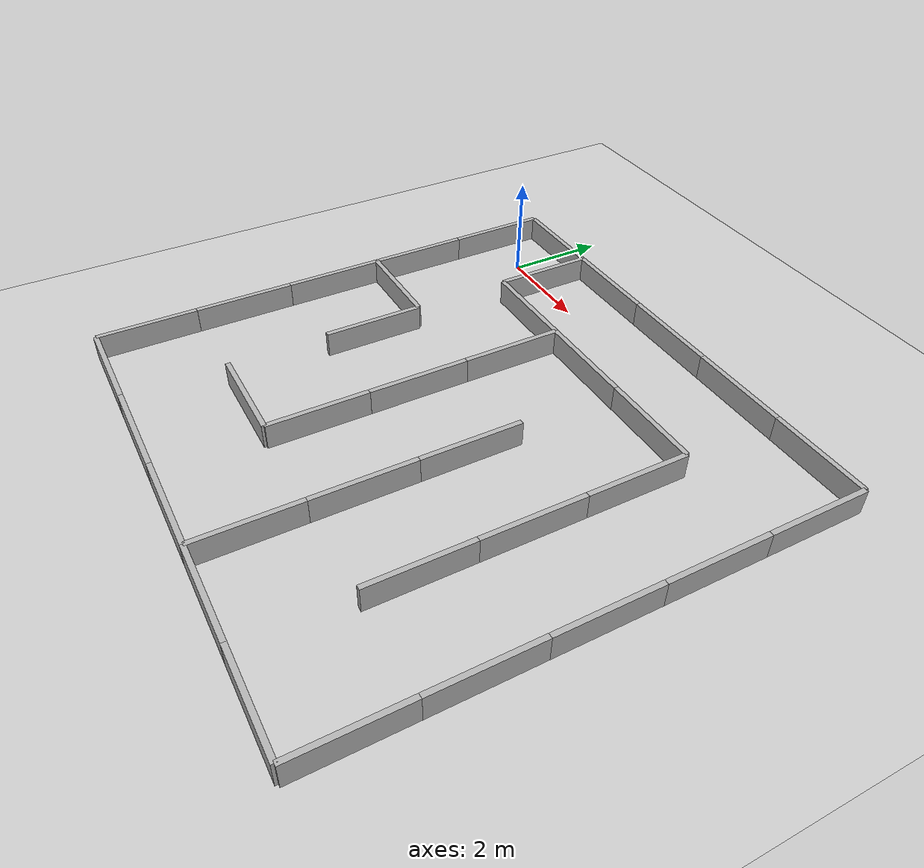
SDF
<?xml version="1.0" ?>
<sdf version="1.8">
  <world name="generated_maze_5x5">

    <physics name="1ms" type="ignored">
      <max_step_size>0.001</max_step_size>
      <real_time_factor>1.0</real_time_factor>
    </physics>

    <plugin filename="gz-sim-physics-system" name="gz::sim::systems::Physics"></plugin>
    <plugin filename="gz-sim-user-commands-system" name="gz::sim::systems::UserCommands"></plugin>
    <plugin filename="gz-sim-scene-broadcaster-system" name="gz::sim::systems::SceneBroadcaster"></plugin>
    <plugin filename="gz-sim-sensors-system" name="gz::sim::systems::Sensors">
      <render_engine>ogre2</render_engine>
    </plugin>

    <light type="directional" name="sun">
      <cast_shadows>true</cast_shadows>
      <pose>0 0 10 0 0 0</pose>
      <diffuse>0.8 0.8 0.8 1</diffuse>
      <specular>0.2 0.2 0.2 1</specular>
      <direction>-0.5 0.1 -0.9</direction>
    </light>

    <model name="ground_plane">
      <static>true</static>
      <link name="link">
        <collision name="collision">
          <geometry>
            <plane>
              <normal>0 0 1</normal>
            </plane>
          </geometry>
        </collision>
        <visual name="visual">
          <geometry>
            <plane>
              <normal>0 0 1</normal>
              <size>100 100</size>
            </plane>
          </geometry>
          <material>
            <ambient>0.8 0.8 0.8 1</ambient>
            <diffuse>0.8 0.8 0.8 1</diffuse>
          </material>
        </visual>
      </link>
    </model>

    <model name="wall_0">
      <static>true</static>
      <pose>0.0 1.0 0.25 0 0 0</pose>
      <link name="link">
        <collision name="collision">
          <geometry>
            <box>
              <size>2.0 0.1 0.5</size>
            </box>
          </geometry>
        </collision>
        <visual name="visual">
          <geometry>
            <box>
              <size>2.0 0.1 0.5</size>
            </box>
          </geometry>
          <material>
            <ambient>0.5 0.5 0.5 1</ambient>
            <diffuse>0.7 0.7 0.7 1</diffuse>
          </material>
        </visual>
      </link>
    </model>
    <model name="wall_1">
      <static>true</static>
      <pose>1.0 0.0 0.25 0 0 0</pose>
      <link name="link">
        <collision name="collision">
          <geometry>
            <box>
              <size>0.1 2.0 0.5</size>
            </box>
          </geometry>
        </collision>
        <visual name="visual">
          <geometry>
            <box>
              <size>0.1 2.0 0.5</size>
            </box>
          </geometry>
          <material>
            <ambient>0.5 0.5 0.5 1</ambient>
            <diffuse>0.7 0.7 0.7 1</diffuse>
          </material>
        </visual>
      </link>
    </model>
    <model name="wall_2">
      <static>true</static>
      <pose>-1.0 0.0 0.25 0 0 0</pose>
      <link name="link">
        <collision name="collision">
          <geometry>
            <box>
              <size>0.1 2.0 0.5</size>
            </box>
          </geometry>
        </collision>
        <visual name="visual">
          <geometry>
            <box>
              <size>0.1 2.0 0.5</size>
            </box>
          </geometry>
          <material>
            <ambient>0.5 0.5 0.5 1</ambient>
            <diffuse>0.7 0.7 0.7 1</diffuse>
          </material>
        </visual>
      </link>
    </model>
    <model name="wall_3">
      <static>true</static>
      <pose>2.0 1.0 0.25 0 0 0</pose>
      <link name="link">
        <collision name="collision">
          <geometry>
            <box>
              <size>2.0 0.1 0.5</size>
            </box>
          </geometry>
        </collision>
        <visual name="visual">
          <geometry>
            <box>
              <size>2.0 0.1 0.5</size>
            </box>
          </geometry>
          <material>
            <ambient>0.5 0.5 0.5 1</ambient>
            <diffuse>0.7 0.7 0.7 1</diffuse>
          </material>
        </visual>
      </link>
    </model>
    <model name="wall_4">
      <static>true</static>
      <pose>2.0 -1.0 0.25 0 0 0</pose>
      <link name="link">
        <collision name="collision">
          <geometry>
            <box>
              <size>2.0 0.1 0.5</size>
            </box>
          </geometry>
        </collision>
        <visual name="visual">
          <geometry>
            <box>
              <size>2.0 0.1 0.5</size>
            </box>
          </geometry>
          <material>
            <ambient>0.5 0.5 0.5 1</ambient>
            <diffuse>0.7 0.7 0.7 1</diffuse>
          </material>
        </visual>
      </link>
    </model>
    <model name="wall_5">
      <static>true</static>
      <pose>1.0 0.0 0.25 0 0 0</pose>
      <link name="link">
        <collision name="collision">
          <geometry>
            <box>
              <size>0.1 2.0 0.5</size>
            </box>
          </geometry>
        </collision>
        <visual name="visual">
          <geometry>
            <box>
              <size>0.1 2.0 0.5</size>
            </box>
          </geometry>
          <material>
            <ambient>0.5 0.5 0.5 1</ambient>
            <diffuse>0.7 0.7 0.7 1</diffuse>
          </material>
        </visual>
      </link>
    </model>
    <model name="wall_6">
      <static>true</static>
      <pose>4.0 1.0 0.25 0 0 0</pose>
      <link name="link">
        <collision name="collision">
          <geometry>
            <box>
              <size>2.0 0.1 0.5</size>
            </box>
          </geometry>
        </collision>
        <visual name="visual">
          <geometry>
            <box>
              <size>2.0 0.1 0.5</size>
            </box>
          </geometry>
          <material>
            <ambient>0.5 0.5 0.5 1</ambient>
            <diffuse>0.7 0.7 0.7 1</diffuse>
          </material>
        </visual>
      </link>
    </model>
    <model name="wall_7">
      <static>true</static>
      <pose>4.0 -1.0 0.25 0 0 0</pose>
      <link name="link">
        <collision name="collision">
          <geometry>
            <box>
              <size>2.0 0.1 0.5</size>
            </box>
          </geometry>
        </collision>
        <visual name="visual">
          <geometry>
            <box>
              <size>2.0 0.1 0.5</size>
            </box>
          </geometry>
          <material>
            <ambient>0.5 0.5 0.5 1</ambient>
            <diffuse>0.7 0.7 0.7 1</diffuse>
          </material>
        </visual>
      </link>
    </model>
    <model name="wall_8">
      <static>true</static>
      <pose>6.0 1.0 0.25 0 0 0</pose>
      <link name="link">
        <collision name="collision">
          <geometry>
            <box>
              <size>2.0 0.1 0.5</size>
            </box>
          </geometry>
        </collision>
        <visual name="visual">
          <geometry>
            <box>
              <size>2.0 0.1 0.5</size>
            </box>
          </geometry>
          <material>
            <ambient>0.5 0.5 0.5 1</ambient>
            <diffuse>0.7 0.7 0.7 1</diffuse>
          </material>
        </visual>
      </link>
    </model>
    <model name="wall_9">
      <static>true</static>
      <pose>6.0 -1.0 0.25 0 0 0</pose>
      <link name="link">
        <collision name="collision">
          <geometry>
            <box>
              <size>2.0 0.1 0.5</size>
            </box>
          </geometry>
        </collision>
        <visual name="visual">
          <geometry>
            <box>
              <size>2.0 0.1 0.5</size>
            </box>
          </geometry>
          <material>
            <ambient>0.5 0.5 0.5 1</ambient>
            <diffuse>0.7 0.7 0.7 1</diffuse>
          </material>
        </visual>
      </link>
    </model>
    <model name="wall_10">
      <static>true</static>
      <pose>8.0 1.0 0.25 0 0 0</pose>
      <link name="link">
        <collision name="collision">
          <geometry>
            <box>
              <size>2.0 0.1 0.5</size>
            </box>
          </geometry>
        </collision>
        <visual name="visual">
          <geometry>
            <box>
              <size>2.0 0.1 0.5</size>
            </box>
          </geometry>
          <material>
            <ambient>0.5 0.5 0.5 1</ambient>
            <diffuse>0.7 0.7 0.7 1</diffuse>
          </material>
        </visual>
      </link>
    </model>
    <model name="wall_11">
      <static>true</static>
      <pose>9.0 0.0 0.25 0 0 0</pose>
      <link name="link">
        <collision name="collision">
          <geometry>
            <box>
              <size>0.1 2.0 0.5</size>
            </box>
          </geometry>
        </collision>
        <visual name="visual">
          <geometry>
            <box>
              <size>0.1 2.0 0.5</size>
            </box>
          </geometry>
          <material>
            <ambient>0.5 0.5 0.5 1</ambient>
            <diffuse>0.7 0.7 0.7 1</diffuse>
          </material>
        </visual>
      </link>
    </model>
    <model name="wall_12">
      <static>true</static>
      <pose>0.0 -3.0 0.25 0 0 0</pose>
      <link name="link">
        <collision name="collision">
          <geometry>
            <box>
              <size>2.0 0.1 0.5</size>
            </box>
          </geometry>
        </collision>
        <visual name="visual">
          <geometry>
            <box>
              <size>2.0 0.1 0.5</size>
            </box>
          </geometry>
          <material>
            <ambient>0.5 0.5 0.5 1</ambient>
            <diffuse>0.7 0.7 0.7 1</diffuse>
          </material>
        </visual>
      </link>
    </model>
    <model name="wall_13">
      <static>true</static>
      <pose>-1.0 -2.0 0.25 0 0 0</pose>
      <link name="link">
        <collision name="collision">
          <geometry>
            <box>
              <size>0.1 2.0 0.5</size>
            </box>
          </geometry>
        </collision>
        <visual name="visual">
          <geometry>
            <box>
              <size>0.1 2.0 0.5</size>
            </box>
          </geometry>
          <material>
            <ambient>0.5 0.5 0.5 1</ambient>
            <diffuse>0.7 0.7 0.7 1</diffuse>
          </material>
        </visual>
      </link>
    </model>
    <model name="wall_14">
      <static>true</static>
      <pose>2.0 -1.0 0.25 0 0 0</pose>
      <link name="link">
        <collision name="collision">
          <geometry>
            <box>
              <size>2.0 0.1 0.5</size>
            </box>
          </geometry>
        </collision>
        <visual name="visual">
          <geometry>
            <box>
              <size>2.0 0.1 0.5</size>
            </box>
          </geometry>
          <material>
            <ambient>0.5 0.5 0.5 1</ambient>
            <diffuse>0.7 0.7 0.7 1</diffuse>
          </material>
        </visual>
      </link>
    </model>
    <model name="wall_15">
      <static>true</static>
      <pose>3.0 -2.0 0.25 0 0 0</pose>
      <link name="link">
        <collision name="collision">
          <geometry>
            <box>
              <size>0.1 2.0 0.5</size>
            </box>
          </geometry>
        </collision>
        <visual name="visual">
          <geometry>
            <box>
              <size>0.1 2.0 0.5</size>
            </box>
          </geometry>
          <material>
            <ambient>0.5 0.5 0.5 1</ambient>
            <diffuse>0.7 0.7 0.7 1</diffuse>
          </material>
        </visual>
      </link>
    </model>
    <model name="wall_16">
      <static>true</static>
      <pose>4.0 -1.0 0.25 0 0 0</pose>
      <link name="link">
        <collision name="collision">
          <geometry>
            <box>
              <size>2.0 0.1 0.5</size>
            </box>
          </geometry>
        </collision>
        <visual name="visual">
          <geometry>
            <box>
              <size>2.0 0.1 0.5</size>
            </box>
          </geometry>
          <material>
            <ambient>0.5 0.5 0.5 1</ambient>
            <diffuse>0.7 0.7 0.7 1</diffuse>
          </material>
        </visual>
      </link>
    </model>
    <model name="wall_17">
      <static>true</static>
      <pose>3.0 -2.0 0.25 0 0 0</pose>
      <link name="link">
        <collision name="collision">
          <geometry>
            <box>
              <size>0.1 2.0 0.5</size>
            </box>
          </geometry>
        </collision>
        <visual name="visual">
          <geometry>
            <box>
              <size>0.1 2.0 0.5</size>
            </box>
          </geometry>
          <material>
            <ambient>0.5 0.5 0.5 1</ambient>
            <diffuse>0.7 0.7 0.7 1</diffuse>
          </material>
        </visual>
      </link>
    </model>
    <model name="wall_18">
      <static>true</static>
      <pose>6.0 -1.0 0.25 0 0 0</pose>
      <link name="link">
        <collision name="collision">
          <geometry>
            <box>
              <size>2.0 0.1 0.5</size>
            </box>
          </geometry>
        </collision>
        <visual name="visual">
          <geometry>
            <box>
              <size>2.0 0.1 0.5</size>
            </box>
          </geometry>
          <material>
            <ambient>0.5 0.5 0.5 1</ambient>
            <diffuse>0.7 0.7 0.7 1</diffuse>
          </material>
        </visual>
      </link>
    </model>
    <model name="wall_19">
      <static>true</static>
      <pose>7.0 -2.0 0.25 0 0 0</pose>
      <link name="link">
        <collision name="collision">
          <geometry>
            <box>
              <size>0.1 2.0 0.5</size>
            </box>
          </geometry>
        </collision>
        <visual name="visual">
          <geometry>
            <box>
              <size>0.1 2.0 0.5</size>
            </box>
          </geometry>
          <material>
            <ambient>0.5 0.5 0.5 1</ambient>
            <diffuse>0.7 0.7 0.7 1</diffuse>
          </material>
        </visual>
      </link>
    </model>
    <model name="wall_20">
      <static>true</static>
      <pose>9.0 -2.0 0.25 0 0 0</pose>
      <link name="link">
        <collision name="collision">
          <geometry>
            <box>
              <size>0.1 2.0 0.5</size>
            </box>
          </geometry>
        </collision>
        <visual name="visual">
          <geometry>
            <box>
              <size>0.1 2.0 0.5</size>
            </box>
          </geometry>
          <material>
            <ambient>0.5 0.5 0.5 1</ambient>
            <diffuse>0.7 0.7 0.7 1</diffuse>
          </material>
        </visual>
      </link>
    </model>
    <model name="wall_21">
      <static>true</static>
      <pose>7.0 -2.0 0.25 0 0 0</pose>
      <link name="link">
        <collision name="collision">
          <geometry>
            <box>
              <size>0.1 2.0 0.5</size>
            </box>
          </geometry>
        </collision>
        <visual name="visual">
          <geometry>
            <box>
              <size>0.1 2.0 0.5</size>
            </box>
          </geometry>
          <material>
            <ambient>0.5 0.5 0.5 1</ambient>
            <diffuse>0.7 0.7 0.7 1</diffuse>
          </material>
        </visual>
      </link>
    </model>
    <model name="wall_22">
      <static>true</static>
      <pose>0.0 -3.0 0.25 0 0 0</pose>
      <link name="link">
        <collision name="collision">
          <geometry>
            <box>
              <size>2.0 0.1 0.5</size>
            </box>
          </geometry>
        </collision>
        <visual name="visual">
          <geometry>
            <box>
              <size>2.0 0.1 0.5</size>
            </box>
          </geometry>
          <material>
            <ambient>0.5 0.5 0.5 1</ambient>
            <diffuse>0.7 0.7 0.7 1</diffuse>
          </material>
        </visual>
      </link>
    </model>
    <model name="wall_23">
      <static>true</static>
      <pose>1.0 -4.0 0.25 0 0 0</pose>
      <link name="link">
        <collision name="collision">
          <geometry>
            <box>
              <size>0.1 2.0 0.5</size>
            </box>
          </geometry>
        </collision>
        <visual name="visual">
          <geometry>
            <box>
              <size>0.1 2.0 0.5</size>
            </box>
          </geometry>
          <material>
            <ambient>0.5 0.5 0.5 1</ambient>
            <diffuse>0.7 0.7 0.7 1</diffuse>
          </material>
        </visual>
      </link>
    </model>
    <model name="wall_24">
      <static>true</static>
      <pose>-1.0 -4.0 0.25 0 0 0</pose>
      <link name="link">
        <collision name="collision">
          <geometry>
            <box>
              <size>0.1 2.0 0.5</size>
            </box>
          </geometry>
        </collision>
        <visual name="visual">
          <geometry>
            <box>
              <size>0.1 2.0 0.5</size>
            </box>
          </geometry>
          <material>
            <ambient>0.5 0.5 0.5 1</ambient>
            <diffuse>0.7 0.7 0.7 1</diffuse>
          </material>
        </visual>
      </link>
    </model>
    <model name="wall_25">
      <static>true</static>
      <pose>3.0 -4.0 0.25 0 0 0</pose>
      <link name="link">
        <collision name="collision">
          <geometry>
            <box>
              <size>0.1 2.0 0.5</size>
            </box>
          </geometry>
        </collision>
        <visual name="visual">
          <geometry>
            <box>
              <size>0.1 2.0 0.5</size>
            </box>
          </geometry>
          <material>
            <ambient>0.5 0.5 0.5 1</ambient>
            <diffuse>0.7 0.7 0.7 1</diffuse>
          </material>
        </visual>
      </link>
    </model>
    <model name="wall_26">
      <static>true</static>
      <pose>1.0 -4.0 0.25 0 0 0</pose>
      <link name="link">
        <collision name="collision">
          <geometry>
            <box>
              <size>0.1 2.0 0.5</size>
            </box>
          </geometry>
        </collision>
        <visual name="visual">
          <geometry>
            <box>
              <size>0.1 2.0 0.5</size>
            </box>
          </geometry>
          <material>
            <ambient>0.5 0.5 0.5 1</ambient>
            <diffuse>0.7 0.7 0.7 1</diffuse>
          </material>
        </visual>
      </link>
    </model>
    <model name="wall_27">
      <static>true</static>
      <pose>5.0 -4.0 0.25 0 0 0</pose>
      <link name="link">
        <collision name="collision">
          <geometry>
            <box>
              <size>0.1 2.0 0.5</size>
            </box>
          </geometry>
        </collision>
        <visual name="visual">
          <geometry>
            <box>
              <size>0.1 2.0 0.5</size>
            </box>
          </geometry>
          <material>
            <ambient>0.5 0.5 0.5 1</ambient>
            <diffuse>0.7 0.7 0.7 1</diffuse>
          </material>
        </visual>
      </link>
    </model>
    <model name="wall_28">
      <static>true</static>
      <pose>3.0 -4.0 0.25 0 0 0</pose>
      <link name="link">
        <collision name="collision">
          <geometry>
            <box>
              <size>0.1 2.0 0.5</size>
            </box>
          </geometry>
        </collision>
        <visual name="visual">
          <geometry>
            <box>
              <size>0.1 2.0 0.5</size>
            </box>
          </geometry>
          <material>
            <ambient>0.5 0.5 0.5 1</ambient>
            <diffuse>0.7 0.7 0.7 1</diffuse>
          </material>
        </visual>
      </link>
    </model>
    <model name="wall_29">
      <static>true</static>
      <pose>7.0 -4.0 0.25 0 0 0</pose>
      <link name="link">
        <collision name="collision">
          <geometry>
            <box>
              <size>0.1 2.0 0.5</size>
            </box>
          </geometry>
        </collision>
        <visual name="visual">
          <geometry>
            <box>
              <size>0.1 2.0 0.5</size>
            </box>
          </geometry>
          <material>
            <ambient>0.5 0.5 0.5 1</ambient>
            <diffuse>0.7 0.7 0.7 1</diffuse>
          </material>
        </visual>
      </link>
    </model>
    <model name="wall_30">
      <static>true</static>
      <pose>5.0 -4.0 0.25 0 0 0</pose>
      <link name="link">
        <collision name="collision">
          <geometry>
            <box>
              <size>0.1 2.0 0.5</size>
            </box>
          </geometry>
        </collision>
        <visual name="visual">
          <geometry>
            <box>
              <size>0.1 2.0 0.5</size>
            </box>
          </geometry>
          <material>
            <ambient>0.5 0.5 0.5 1</ambient>
            <diffuse>0.7 0.7 0.7 1</diffuse>
          </material>
        </visual>
      </link>
    </model>
    <model name="wall_31">
      <static>true</static>
      <pose>9.0 -4.0 0.25 0 0 0</pose>
      <link name="link">
        <collision name="collision">
          <geometry>
            <box>
              <size>0.1 2.0 0.5</size>
            </box>
          </geometry>
        </collision>
        <visual name="visual">
          <geometry>
            <box>
              <size>0.1 2.0 0.5</size>
            </box>
          </geometry>
          <material>
            <ambient>0.5 0.5 0.5 1</ambient>
            <diffuse>0.7 0.7 0.7 1</diffuse>
          </material>
        </visual>
      </link>
    </model>
    <model name="wall_32">
      <static>true</static>
      <pose>7.0 -4.0 0.25 0 0 0</pose>
      <link name="link">
        <collision name="collision">
          <geometry>
            <box>
              <size>0.1 2.0 0.5</size>
            </box>
          </geometry>
        </collision>
        <visual name="visual">
          <geometry>
            <box>
              <size>0.1 2.0 0.5</size>
            </box>
          </geometry>
          <material>
            <ambient>0.5 0.5 0.5 1</ambient>
            <diffuse>0.7 0.7 0.7 1</diffuse>
          </material>
        </visual>
      </link>
    </model>
    <model name="wall_33">
      <static>true</static>
      <pose>-1.0 -6.0 0.25 0 0 0</pose>
      <link name="link">
        <collision name="collision">
          <geometry>
            <box>
              <size>0.1 2.0 0.5</size>
            </box>
          </geometry>
        </collision>
        <visual name="visual">
          <geometry>
            <box>
              <size>0.1 2.0 0.5</size>
            </box>
          </geometry>
          <material>
            <ambient>0.5 0.5 0.5 1</ambient>
            <diffuse>0.7 0.7 0.7 1</diffuse>
          </material>
        </visual>
      </link>
    </model>
    <model name="wall_34">
      <static>true</static>
      <pose>2.0 -7.0 0.25 0 0 0</pose>
      <link name="link">
        <collision name="collision">
          <geometry>
            <box>
              <size>2.0 0.1 0.5</size>
            </box>
          </geometry>
        </collision>
        <visual name="visual">
          <geometry>
            <box>
              <size>2.0 0.1 0.5</size>
            </box>
          </geometry>
          <material>
            <ambient>0.5 0.5 0.5 1</ambient>
            <diffuse>0.7 0.7 0.7 1</diffuse>
          </material>
        </visual>
      </link>
    </model>
    <model name="wall_35">
      <static>true</static>
      <pose>3.0 -6.0 0.25 0 0 0</pose>
      <link name="link">
        <collision name="collision">
          <geometry>
            <box>
              <size>0.1 2.0 0.5</size>
            </box>
          </geometry>
        </collision>
        <visual name="visual">
          <geometry>
            <box>
              <size>0.1 2.0 0.5</size>
            </box>
          </geometry>
          <material>
            <ambient>0.5 0.5 0.5 1</ambient>
            <diffuse>0.7 0.7 0.7 1</diffuse>
          </material>
        </visual>
      </link>
    </model>
    <model name="wall_36">
      <static>true</static>
      <pose>5.0 -6.0 0.25 0 0 0</pose>
      <link name="link">
        <collision name="collision">
          <geometry>
            <box>
              <size>0.1 2.0 0.5</size>
            </box>
          </geometry>
        </collision>
        <visual name="visual">
          <geometry>
            <box>
              <size>0.1 2.0 0.5</size>
            </box>
          </geometry>
          <material>
            <ambient>0.5 0.5 0.5 1</ambient>
            <diffuse>0.7 0.7 0.7 1</diffuse>
          </material>
        </visual>
      </link>
    </model>
    <model name="wall_37">
      <static>true</static>
      <pose>3.0 -6.0 0.25 0 0 0</pose>
      <link name="link">
        <collision name="collision">
          <geometry>
            <box>
              <size>0.1 2.0 0.5</size>
            </box>
          </geometry>
        </collision>
        <visual name="visual">
          <geometry>
            <box>
              <size>0.1 2.0 0.5</size>
            </box>
          </geometry>
          <material>
            <ambient>0.5 0.5 0.5 1</ambient>
            <diffuse>0.7 0.7 0.7 1</diffuse>
          </material>
        </visual>
      </link>
    </model>
    <model name="wall_38">
      <static>true</static>
      <pose>7.0 -6.0 0.25 0 0 0</pose>
      <link name="link">
        <collision name="collision">
          <geometry>
            <box>
              <size>0.1 2.0 0.5</size>
            </box>
          </geometry>
        </collision>
        <visual name="visual">
          <geometry>
            <box>
              <size>0.1 2.0 0.5</size>
            </box>
          </geometry>
          <material>
            <ambient>0.5 0.5 0.5 1</ambient>
            <diffuse>0.7 0.7 0.7 1</diffuse>
          </material>
        </visual>
      </link>
    </model>
    <model name="wall_39">
      <static>true</static>
      <pose>5.0 -6.0 0.25 0 0 0</pose>
      <link name="link">
        <collision name="collision">
          <geometry>
            <box>
              <size>0.1 2.0 0.5</size>
            </box>
          </geometry>
        </collision>
        <visual name="visual">
          <geometry>
            <box>
              <size>0.1 2.0 0.5</size>
            </box>
          </geometry>
          <material>
            <ambient>0.5 0.5 0.5 1</ambient>
            <diffuse>0.7 0.7 0.7 1</diffuse>
          </material>
        </visual>
      </link>
    </model>
    <model name="wall_40">
      <static>true</static>
      <pose>9.0 -6.0 0.25 0 0 0</pose>
      <link name="link">
        <collision name="collision">
          <geometry>
            <box>
              <size>0.1 2.0 0.5</size>
            </box>
          </geometry>
        </collision>
        <visual name="visual">
          <geometry>
            <box>
              <size>0.1 2.0 0.5</size>
            </box>
          </geometry>
          <material>
            <ambient>0.5 0.5 0.5 1</ambient>
            <diffuse>0.7 0.7 0.7 1</diffuse>
          </material>
        </visual>
      </link>
    </model>
    <model name="wall_41">
      <static>true</static>
      <pose>7.0 -6.0 0.25 0 0 0</pose>
      <link name="link">
        <collision name="collision">
          <geometry>
            <box>
              <size>0.1 2.0 0.5</size>
            </box>
          </geometry>
        </collision>
        <visual name="visual">
          <geometry>
            <box>
              <size>0.1 2.0 0.5</size>
            </box>
          </geometry>
          <material>
            <ambient>0.5 0.5 0.5 1</ambient>
            <diffuse>0.7 0.7 0.7 1</diffuse>
          </material>
        </visual>
      </link>
    </model>
    <model name="wall_42">
      <static>true</static>
      <pose>0.0 -9.0 0.25 0 0 0</pose>
      <link name="link">
        <collision name="collision">
          <geometry>
            <box>
              <size>2.0 0.1 0.5</size>
            </box>
          </geometry>
        </collision>
        <visual name="visual">
          <geometry>
            <box>
              <size>2.0 0.1 0.5</size>
            </box>
          </geometry>
          <material>
            <ambient>0.5 0.5 0.5 1</ambient>
            <diffuse>0.7 0.7 0.7 1</diffuse>
          </material>
        </visual>
      </link>
    </model>
    <model name="wall_43">
      <static>true</static>
      <pose>-1.0 -8.0 0.25 0 0 0</pose>
      <link name="link">
        <collision name="collision">
          <geometry>
            <box>
              <size>0.1 2.0 0.5</size>
            </box>
          </geometry>
        </collision>
        <visual name="visual">
          <geometry>
            <box>
              <size>0.1 2.0 0.5</size>
            </box>
          </geometry>
          <material>
            <ambient>0.5 0.5 0.5 1</ambient>
            <diffuse>0.7 0.7 0.7 1</diffuse>
          </material>
        </visual>
      </link>
    </model>
    <model name="wall_44">
      <static>true</static>
      <pose>2.0 -7.0 0.25 0 0 0</pose>
      <link name="link">
        <collision name="collision">
          <geometry>
            <box>
              <size>2.0 0.1 0.5</size>
            </box>
          </geometry>
        </collision>
        <visual name="visual">
          <geometry>
            <box>
              <size>2.0 0.1 0.5</size>
            </box>
          </geometry>
          <material>
            <ambient>0.5 0.5 0.5 1</ambient>
            <diffuse>0.7 0.7 0.7 1</diffuse>
          </material>
        </visual>
      </link>
    </model>
    <model name="wall_45">
      <static>true</static>
      <pose>2.0 -9.0 0.25 0 0 0</pose>
      <link name="link">
        <collision name="collision">
          <geometry>
            <box>
              <size>2.0 0.1 0.5</size>
            </box>
          </geometry>
        </collision>
        <visual name="visual">
          <geometry>
            <box>
              <size>2.0 0.1 0.5</size>
            </box>
          </geometry>
          <material>
            <ambient>0.5 0.5 0.5 1</ambient>
            <diffuse>0.7 0.7 0.7 1</diffuse>
          </material>
        </visual>
      </link>
    </model>
    <model name="wall_46">
      <static>true</static>
      <pose>4.0 -9.0 0.25 0 0 0</pose>
      <link name="link">
        <collision name="collision">
          <geometry>
            <box>
              <size>2.0 0.1 0.5</size>
            </box>
          </geometry>
        </collision>
        <visual name="visual">
          <geometry>
            <box>
              <size>2.0 0.1 0.5</size>
            </box>
          </geometry>
          <material>
            <ambient>0.5 0.5 0.5 1</ambient>
            <diffuse>0.7 0.7 0.7 1</diffuse>
          </material>
        </visual>
      </link>
    </model>
    <model name="wall_47">
      <static>true</static>
      <pose>5.0 -8.0 0.25 0 0 0</pose>
      <link name="link">
        <collision name="collision">
          <geometry>
            <box>
              <size>0.1 2.0 0.5</size>
            </box>
          </geometry>
        </collision>
        <visual name="visual">
          <geometry>
            <box>
              <size>0.1 2.0 0.5</size>
            </box>
          </geometry>
          <material>
            <ambient>0.5 0.5 0.5 1</ambient>
            <diffuse>0.7 0.7 0.7 1</diffuse>
          </material>
        </visual>
      </link>
    </model>
    <model name="wall_48">
      <static>true</static>
      <pose>6.0 -9.0 0.25 0 0 0</pose>
      <link name="link">
        <collision name="collision">
          <geometry>
            <box>
              <size>2.0 0.1 0.5</size>
            </box>
          </geometry>
        </collision>
        <visual name="visual">
          <geometry>
            <box>
              <size>2.0 0.1 0.5</size>
            </box>
          </geometry>
          <material>
            <ambient>0.5 0.5 0.5 1</ambient>
            <diffuse>0.7 0.7 0.7 1</diffuse>
          </material>
        </visual>
      </link>
    </model>
    <model name="wall_49">
      <static>true</static>
      <pose>5.0 -8.0 0.25 0 0 0</pose>
      <link name="link">
        <collision name="collision">
          <geometry>
            <box>
              <size>0.1 2.0 0.5</size>
            </box>
          </geometry>
        </collision>
        <visual name="visual">
          <geometry>
            <box>
              <size>0.1 2.0 0.5</size>
            </box>
          </geometry>
          <material>
            <ambient>0.5 0.5 0.5 1</ambient>
            <diffuse>0.7 0.7 0.7 1</diffuse>
          </material>
        </visual>
      </link>
    </model>
    <model name="wall_50">
      <static>true</static>
      <pose>8.0 -9.0 0.25 0 0 0</pose>
      <link name="link">
        <collision name="collision">
          <geometry>
            <box>
              <size>2.0 0.1 0.5</size>
            </box>
          </geometry>
        </collision>
        <visual name="visual">
          <geometry>
            <box>
              <size>2.0 0.1 0.5</size>
            </box>
          </geometry>
          <material>
            <ambient>0.5 0.5 0.5 1</ambient>
            <diffuse>0.7 0.7 0.7 1</diffuse>
          </material>
        </visual>
      </link>
    </model>
    <model name="wall_51">
      <static>true</static>
      <pose>9.0 -8.0 0.25 0 0 0</pose>
      <link name="link">
        <collision name="collision">
          <geometry>
            <box>
              <size>0.1 2.0 0.5</size>
            </box>
          </geometry>
        </collision>
        <visual name="visual">
          <geometry>
            <box>
              <size>0.1 2.0 0.5</size>
            </box>
          </geometry>
          <material>
            <ambient>0.5 0.5 0.5 1</ambient>
            <diffuse>0.7 0.7 0.7 1</diffuse>
          </material>
        </visual>
      </link>
    </model>

  </world>
</sdf>
